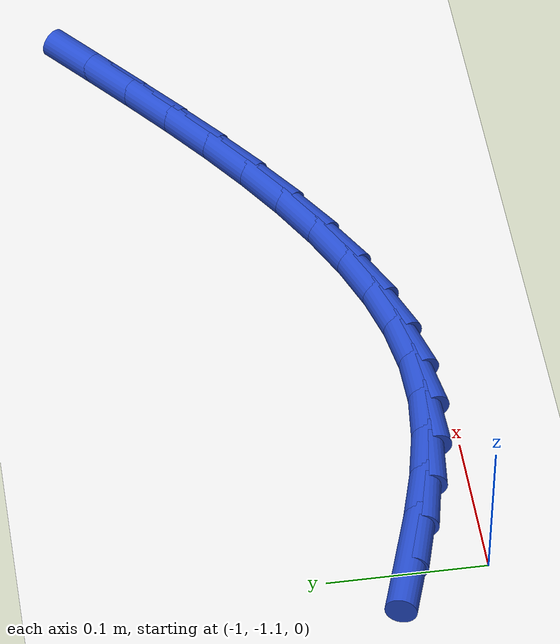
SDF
<sdf version="1.6">
 <world name="default">
  <model name="ground_plane">
   <static>1</static>
   <link name="link">
    <collision name="collision">
     <geometry><plane><normal>0 0 1</normal><size>100 100</size></plane></geometry>
     <surface><friction><ode><mu>100</mu><mu2>50</mu2></ode></friction></surface>
    </collision>
    <visual name="visual">
     <cast_shadows>0</cast_shadows>
     <geometry><plane><normal>0 0 1</normal><size>100 100</size></plane></geometry>
     <material>
      <script><uri>file://media/materials/scripts/gazebo.material</uri><name>Gazebo/WhiteGlow</name></script>
     </material>
    </visual>
   </link>
  </model>
  <model name="line">
   <link name="link_143">
    <pose>-0.9981035946387932 -1.0520428099858987 0.01 0 1.57 -0.3207377341555775</pose>
    <collision name="collision">
     <geometry><cylinder><radius>0.01</radius><length>0.08</length></cylinder></geometry>
    </collision>
    <visual name="visual">
     <material>
      <script><name>Gazebo/Blue</name><uri>file://media/materials/scripts/gazebo.material</uri></script>
     </material>
     <geometry><cylinder><radius>0.01</radius><length>0.08</length></cylinder></geometry>
    </visual>
   </link>
   <link name="link_144">
    <pose>-0.9651145332495341 -1.0630020518665186 0.01 0 1.57 -0.2784466027420116</pose>
    <collision name="collision">
     <geometry><cylinder><radius>0.01</radius><length>0.08</length></cylinder></geometry>
    </collision>
    <visual name="visual">
     <material>
      <script><name>Gazebo/Blue</name><uri>file://media/materials/scripts/gazebo.material</uri></script>
     </material>
     <geometry><cylinder><radius>0.01</radius><length>0.08</length></cylinder></geometry>
    </visual>
   </link>
   <link name="link_145">
    <pose>-0.9324079336991948 -1.0723519931724166 0.01 0 1.57 -0.2079127040487634</pose>
    <collision name="collision">
     <geometry><cylinder><radius>0.01</radius><length>0.08</length></cylinder></geometry>
    </collision>
    <visual name="visual">
     <material>
      <script><name>Gazebo/Blue</name><uri>file://media/materials/scripts/gazebo.material</uri></script>
     </material>
     <geometry><cylinder><radius>0.01</radius><length>0.08</length></cylinder></geometry>
    </visual>
   </link>
   <link name="link_146">
    <pose>-0.8999769954251563 -1.0791936657598544 0.01 0 1.57 -0.1063821178666376</pose>
    <collision name="collision">
     <geometry><cylinder><radius>0.01</radius><length>0.08</length></cylinder></geometry>
    </collision>
    <visual name="visual">
     <material>
      <script><name>Gazebo/Blue</name><uri>file://media/materials/scripts/gazebo.material</uri></script>
     </material>
     <geometry><cylinder><radius>0.01</radius><length>0.08</length></cylinder></geometry>
    </visual>
   </link>
   <link name="link_147">
    <pose>-0.8678149178648012 -1.0826281014850936 0.01 0 1.57 0.02377802465392303</pose>
    <collision name="collision">
     <geometry><cylinder><radius>0.01</radius><length>0.08</length></cylinder></geometry>
    </collision>
    <visual name="visual">
     <material>
      <script><name>Gazebo/Blue</name><uri>file://media/materials/scripts/gazebo.material</uri></script>
     </material>
     <geometry><cylinder><radius>0.01</radius><length>0.08</length></cylinder></geometry>
    </visual>
   </link>
   <link name="link_148">
    <pose>-0.8359164181001477 -1.08186947519151 0.01 0 1.57 0.1539100801917467</pose>
    <collision name="collision">
     <geometry><cylinder><radius>0.01</radius><length>0.08</length></cylinder></geometry>
    </collision>
    <visual name="visual">
     <material>
      <script><name>Gazebo/Blue</name><uri>file://media/materials/scripts/gazebo.material</uri></script>
     </material>
     <geometry><cylinder><radius>0.01</radius><length>0.08</length></cylinder></geometry>
    </visual>
   </link>
   <link name="link_149">
    <pose>-0.8042873554900786 -1.07696263740089 0.01 0 1.57 0.2689330621164432</pose>
    <collision name="collision">
     <geometry><cylinder><radius>0.01</radius><length>0.08</length></cylinder></geometry>
    </collision>
    <visual name="visual">
     <material>
      <script><name>Gazebo/Blue</name><uri>file://media/materials/scripts/gazebo.material</uri></script>
     </material>
     <geometry><cylinder><radius>0.01</radius><length>0.08</length></cylinder></geometry>
    </visual>
   </link>
   <link name="link_150">
    <pose>-0.7729385545593882 -1.0683226001928698 0.01 0 1.57 0.36748956873012667</pose>
    <collision name="collision">
     <geometry><cylinder><radius>0.01</radius><length>0.08</length></cylinder></geometry>
    </collision>
    <visual name="visual">
     <material>
      <script><name>Gazebo/Blue</name><uri>file://media/materials/scripts/gazebo.material</uri></script>
     </material>
     <geometry><cylinder><radius>0.01</radius><length>0.08</length></cylinder></geometry>
    </visual>
   </link>
   <link name="link_151">
    <pose>-0.7418808626421062 -1.0563660761143516 0.01 0 1.57 0.4499890472406412</pose>
    <collision name="collision">
     <geometry><cylinder><radius>0.01</radius><length>0.08</length></cylinder></geometry>
    </collision>
    <visual name="visual">
     <material>
      <script><name>Gazebo/Blue</name><uri>file://media/materials/scripts/gazebo.material</uri></script>
     </material>
     <geometry><cylinder><radius>0.01</radius><length>0.08</length></cylinder></geometry>
    </visual>
   </link>
   <link name="link_152">
    <pose>-0.711125127072263 -1.0415097777122395 0.01 0 1.57 0.5177434062594827</pose>
    <collision name="collision">
     <geometry><cylinder><radius>0.01</radius><length>0.08</length></cylinder></geometry>
    </collision>
    <visual name="visual">
     <material>
      <script><name>Gazebo/Blue</name><uri>file://media/materials/scripts/gazebo.material</uri></script>
     </material>
     <geometry><cylinder><radius>0.01</radius><length>0.08</length></cylinder></geometry>
    </visual>
   </link>
   <link name="link_153">
    <pose>-0.6806821951838875 -1.024170417533435 0.01 0 1.57 0.5723543873936885</pose>
    <collision name="collision">
     <geometry><cylinder><radius>0.01</radius><length>0.08</length></cylinder></geometry>
    </collision>
    <visual name="visual">
     <material>
      <script><name>Gazebo/Blue</name><uri>file://media/materials/scripts/gazebo.material</uri></script>
     </material>
     <geometry><cylinder><radius>0.01</radius><length>0.08</length></cylinder></geometry>
    </visual>
   </link>
   <link name="link_154">
    <pose>-0.6505629143110098 -1.0047647081248416 0.01 0 1.57 0.6153526613146503</pose>
    <collision name="collision">
     <geometry><cylinder><radius>0.01</radius><length>0.08</length></cylinder></geometry>
    </collision>
    <visual name="visual">
     <material>
      <script><name>Gazebo/Blue</name><uri>file://media/materials/scripts/gazebo.material</uri></script>
     </material>
     <geometry><cylinder><radius>0.01</radius><length>0.08</length></cylinder></geometry>
    </visual>
   </link>
   <link name="link_155">
    <pose>-0.6207781317876597 -0.9837093620333619 0.01 0 1.57 0.6480225752421012</pose>
    <collision name="collision">
     <geometry><cylinder><radius>0.01</radius><length>0.08</length></cylinder></geometry>
    </collision>
    <visual name="visual">
     <material>
      <script><name>Gazebo/Blue</name><uri>file://media/materials/scripts/gazebo.material</uri></script>
     </material>
     <geometry><cylinder><radius>0.01</radius><length>0.08</length></cylinder></geometry>
    </visual>
   </link>
   <link name="link_156">
    <pose>-0.5913386949478673 -0.961421091805899 0.01 0 1.57 0.671332840064283</pose>
    <collision name="collision">
     <geometry><cylinder><radius>0.01</radius><length>0.08</length></cylinder></geometry>
    </collision>
    <visual name="visual">
     <material>
      <script><name>Gazebo/Blue</name><uri>file://media/materials/scripts/gazebo.material</uri></script>
     </material>
     <geometry><cylinder><radius>0.01</radius><length>0.08</length></cylinder></geometry>
    </visual>
   </link>
   <link name="link_157">
    <pose>-0.5622554511256622 -0.9383166099893557 0.01 0 1.57 0.6859152439305749</pose>
    <collision name="collision">
     <geometry><cylinder><radius>0.01</radius><length>0.08</length></cylinder></geometry>
    </collision>
    <visual name="visual">
     <material>
      <script><name>Gazebo/Blue</name><uri>file://media/materials/scripts/gazebo.material</uri></script>
     </material>
     <geometry><cylinder><radius>0.01</radius><length>0.08</length></cylinder></geometry>
    </visual>
   </link>
   <link name="link_158">
    <pose>-0.5335392476550744 -0.9148126291306349 0.01 0 1.57 0.6920562928097487</pose>
    <collision name="collision">
     <geometry><cylinder><radius>0.01</radius><length>0.08</length></cylinder></geometry>
    </collision>
    <visual name="visual">
     <material>
      <script><name>Gazebo/Blue</name><uri>file://media/materials/scripts/gazebo.material</uri></script>
     </material>
     <geometry><cylinder><radius>0.01</radius><length>0.08</length></cylinder></geometry>
    </visual>
   </link>
  </model>
 </world>
</sdf>
